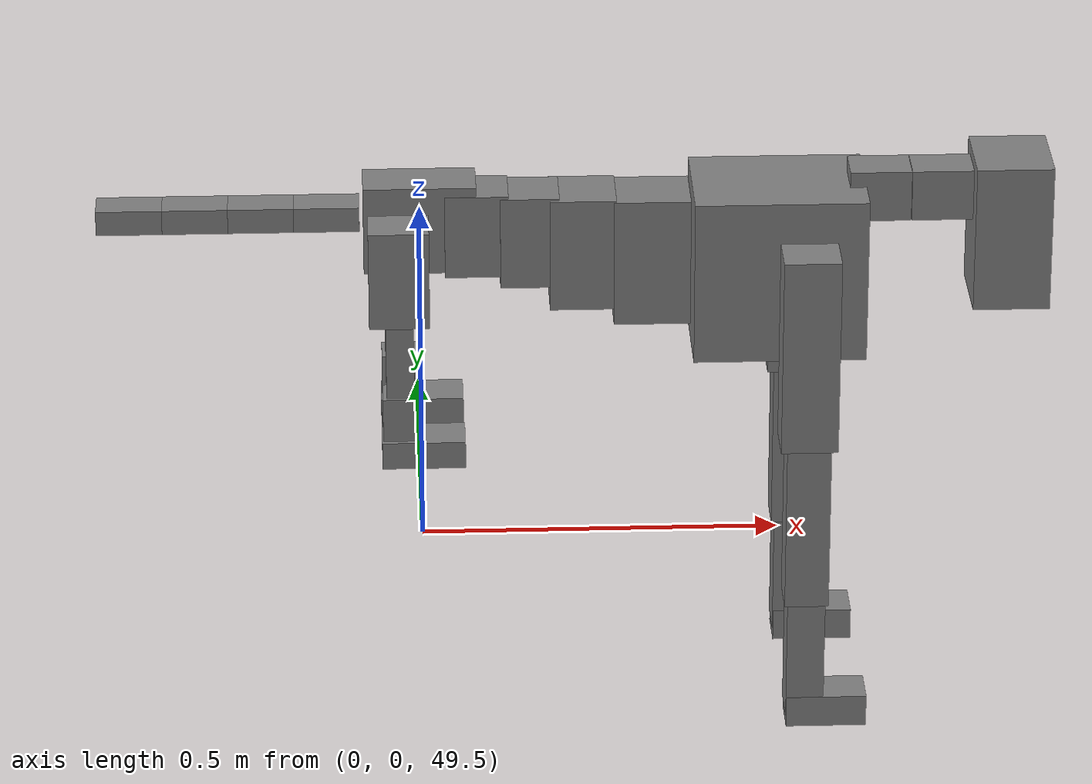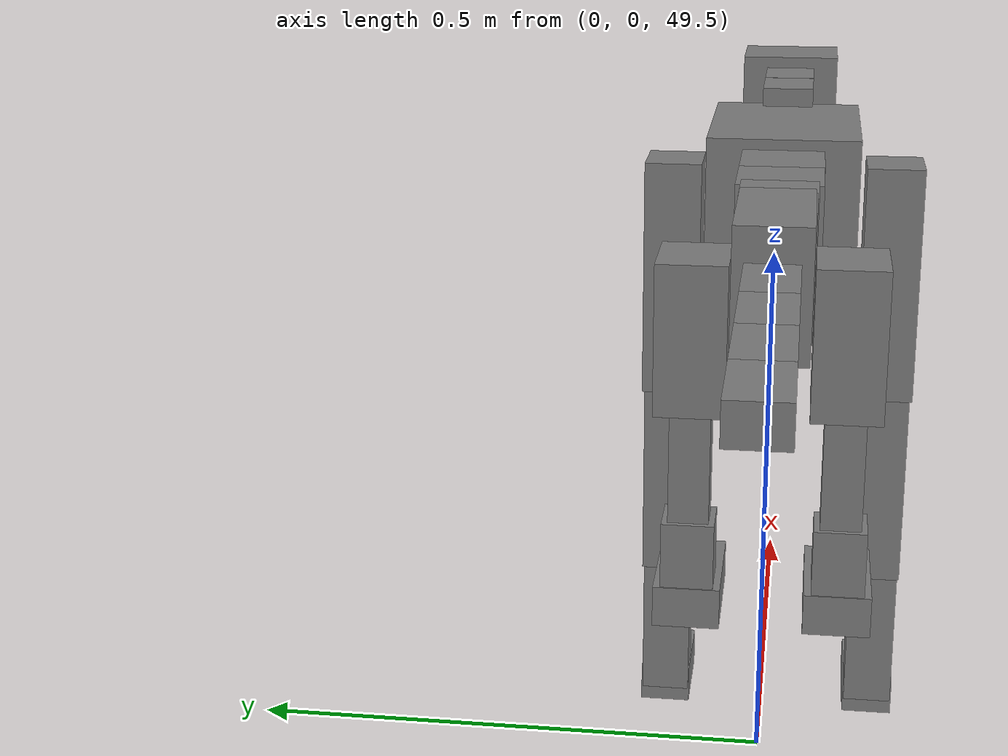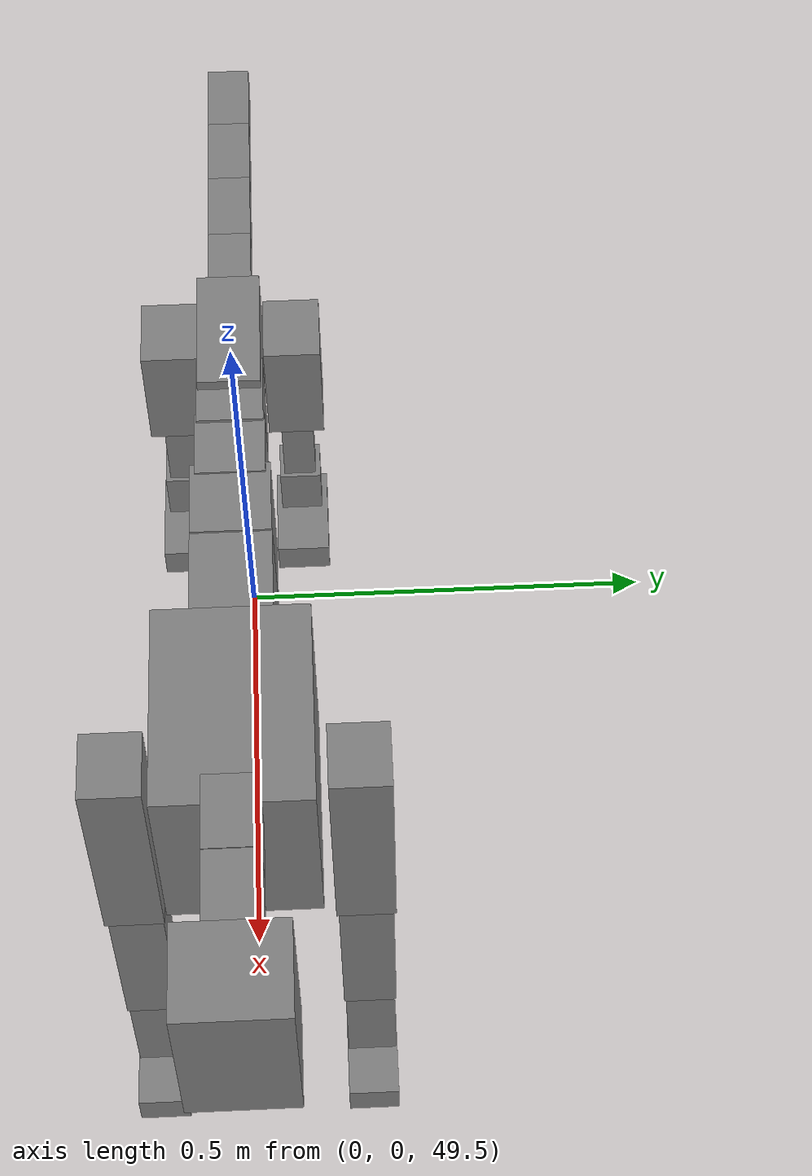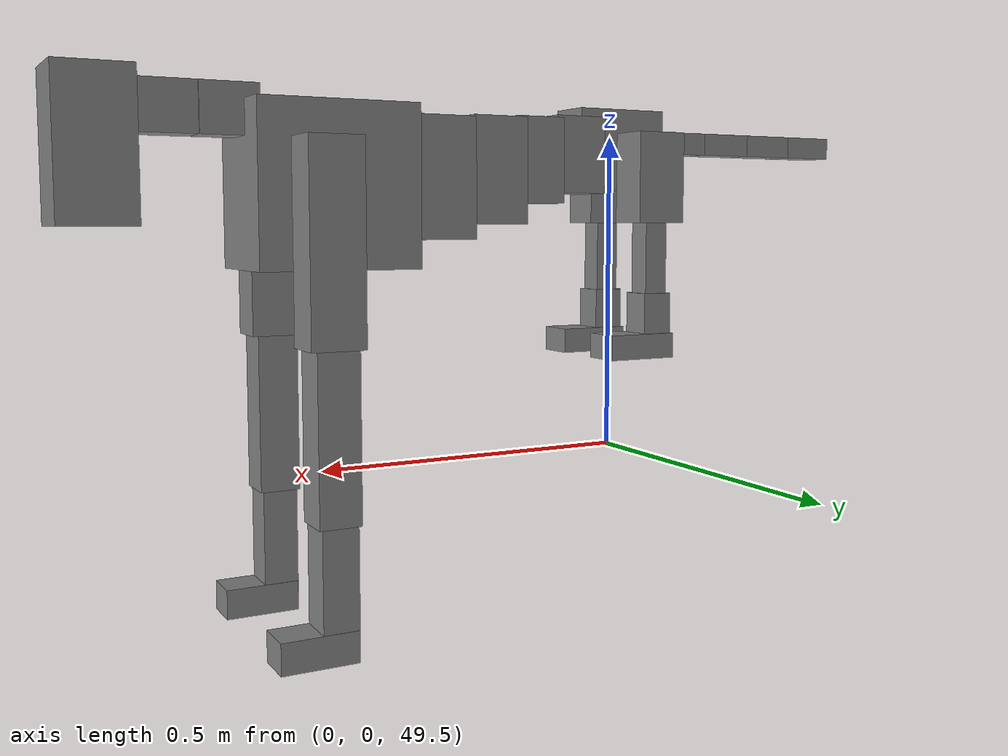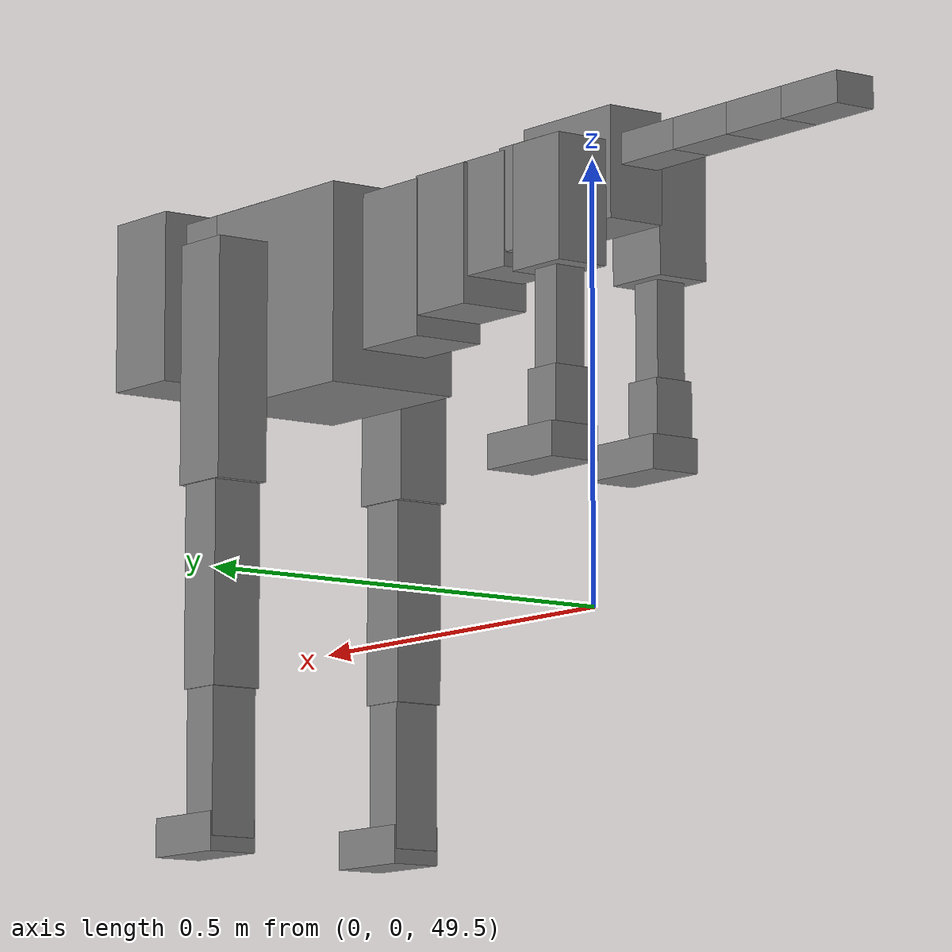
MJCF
<mujoco model="dog">

    <default>
        <joint armature="0.02" stiffness="1" damping="0.2" limited="true"/>
        <geom condim="3" friction="1 0.05 0.05" margin="0.01"/>
        <motor ctrllimited="true" ctrlrange="-1.0 1.0" forcelimited="true" gear="50"/>
    </default>

    <compiler inertiafromgeom="true" angle="radian"/>

    <option timestep="0.016" iterations="50" tolerance="1e-10" solver="Newton" jacobian="dense" cone="pyramidal"/>

    <size nconmax="20000" njmax="60000" nstack="5000000"/>
    <visual>
        <map force="0.1" zfar="30"/>
        <rgba haze="0.15 0.25 0.35 1"/>
        <quality shadowsize="2048"/>
        <global offwidth="800" offheight="800"/>
    </visual>

    <asset>
        <texture type="skybox" builtin="gradient" rgb1="0.3 0.5 0.7" rgb2="0 0 0" width="512" height="512"/>
        <texture name="texplane" type="2d" builtin="checker" rgb1=".2 .3 .4" rgb2=".1 0.15 0.2" width="512" height="512"
                 mark="cross" markrgb=".8 .8 .8"/>
        <texture name="texgeom" type="cube" builtin="flat" mark="cross" width="127" height="1278" rgb1="0.8 0.6 0.4"
                 rgb2="0.8 0.6 0.4" markrgb="1 1 1" random="0.01"/>

        <material name="matplane" reflectance="0.3" texture="texplane" texrepeat="1 1" texuniform="true"/>
        <material name="matgeom" texture="texgeom" texuniform="true" rgba="0.8 0.6 .4 1"/>
    </asset>

    <worldbody>
        <geom name="floor" pos="0 0 0" size="0 0 .25" type="plane" material="matplane" condim="3"/>

        <light directional="false" diffuse=".2 .2 .2" specular="0 0 0" pos="0 0 5" dir="0 0 -1" castshadow="false"/>
        <light mode="targetbodycom" target="torso" directional="false" diffuse=".8 .8 .8" specular="0.3 0.3 0.3"
               pos="0 0 4.0" dir="0 0 -1"/>

        <body name="root" pos="0 0 50">
            <freejoint name="root_1"/>
            <geom type="box" pos="0 0 -0.02" size="0.0774  0.0358  0.063" density="2030"/>

            <body name="spine1" pos="0.054 0 0">
                <joint name="spine1_y" axis="0 1 0" range="0 0.7" limited="true"/>
                <geom type="box" pos="0.02375 0 -0.03" size="0.04375  0.0375  0.05985" density="2030"/>

                <body name="spine2" pos="0.0612 0 0">
                    <joint name="spine2_y" axis="0 1 0" range="-0.15 0.15" limited="true"/>
                    <geom type="box" pos="0.03555  0  -0.04" size="0.04055  0.039  0.06615" density="2030"/>

                    <body name="spine3" pos="0.0730 0 0">
                        <joint name="spine3_y" axis="0 1 0" range="-0.15 0.15" limited="true"/>
                        <geom type="box" pos="0.03555  0  -0.057" size="0.04555  0.0445  0.081" density="2030"/>

                        <body name="spine4" pos="0.0780 0 0">
                            <joint name="spine4_y" axis="0 1 0" range="-0.15 0.15" limited="true"/>
                            <geom type="box" pos="0.05265  0  -0.07" size="0.05265  0.045  0.09135" density="2030"/>

                            <body name="torso" pos="0.1082 0 0">
                                <joint name="torso_y" axis="0 1 0" range="-0.15 0.15" limited="true"/>
                                <geom type="box" pos="0.11925  0  -0.085" size="0.11925  0.085  0.11745"
                                      density="2030"/>

                                <body name="neck1" pos="0.2160  0   0.0180">
                                    <joint name="neck1_y" axis="0 1 0" range="-1.2  -1" limited="true"/>
                                    <geom type="box" pos="0.0423  0  0" size="0.0423  0.03  0.036" density="2325"/>

                                    <body name="neck2" pos="0.0853  0  0">
                                        <joint name="neck2_y" axis="0 1 0" range="0.1  0" limited="true"/>
                                        <geom type="box" pos="0.0423  0  0" size="0.0423  0.03  0.036" density="2325"/>

                                        <body name="head" pos="0.0853  0  0">
                                            <joint name="head_y" axis="0 1 0" range="-0.3  -0.2" limited="true"/>
                                            <geom type="box" pos="0.0531  0  -0.055" size="0.0531  0.06  0.1044"
                                                  density="4030"/>

                                        </body>
                                    </body>
                                </body>

                                <body name="front_shoulder" pos="0.156  0   -0.0480">
                                    <joint name="front_shoulder_y" axis="0 1 0" range="-1 1.5" limited="true"/>
                                    <geom type="box" pos="0 0.13 -0.1156" size="0.0394  0.0337  0.1423" density="1158"/>
                                    <geom type="box" pos="0 -0.13 -0.1156" size="0.0394  0.0337  0.1423"
                                          density="1158"/>

                                    <body name="front_elbow" pos="0  0  -0.2312">
                                        <joint name="front_elbow_y" axis="0 1 0" range="-2 0" limited="true"/>
                                        <geom type="box" pos="0 0.13 -0.1331" size="0.0306  0.0312  0.1331"
                                              density="1081"/>
                                        <geom type="box" pos="0 -0.13 -0.1331" size="0.0306  0.0312  0.1331"
                                              density="1081"/>

                                        <body name="front_wrist" pos="0  0  -0.2662">
                                            <joint name="front_wrist_y" axis="0 1 0" range="-0.2 0" limited="true"/>
                                            <geom type="box" pos="0 0.13 -0.0797" size="0.0264  0.0294  0.0929"
                                                  density="1664"/>
                                            <geom type="box" pos="0 -0.13 -0.0797" size="0.0264  0.0294  0.0929"
                                                  density="1664"/>

                                            <body name="front_finger_end" pos="0  0  -0.1594">
                                                <joint name="front_finger_y" axis="0 1 0" range="-0.4 1"
                                                       limited="true"/>
                                                <geom type="box" pos="0.0307  0.13  -0.0078"
                                                      size="0.0562  0.0307  0.0228" density="1515"/>
                                                <geom type="box" pos="0.0307  -0.13  -0.0078"
                                                      size="0.0562  0.0307  0.0228" density="1515"/>

                                            </body>

                                        </body>
                                    </body>
                                </body>

                            </body>
                        </body>
                    </body>
                </body>
            </body>

            <body name="back_hip" pos="-0.03 0 -0.018">
                <joint name="back_hip_y" axis="0 1 0" range="-1.5 0.3" limited="true"/>
                <geom type="box" pos="0 0.07 -0.0478" size="0.0414  0.0325  0.0706" density="1154"/>
                <geom type="box" pos="0 -0.07 -0.0478" size="0.0414  0.0325  0.0706" density="1154"/>

                <body name="back_knee" pos="0  0  -0.0956">
                    <joint name="back_knee_y" axis="0 1 0" range="0 2.8" limited="true"/>
                    <geom type="box" pos="0 0.07 -0.0724" size="0.0193  0.0190  0.0880" density="1227"/>
                    <geom type="box" pos="0 -0.07 -0.0724" size="0.0193  0.0190  0.0880" density="1227"/>

                    <body name="back_ankle" pos="0  0  -0.1448">
                        <joint name="back_ankle_y" axis="0 1 0" range="-2.2 0" limited="true"/>
                        <geom type="box" pos="0 0.07 -0.0336" size="0.0246  0.0246  0.0448" density="1284"/>
                        <geom type="box" pos="0 -0.07 -0.0336" size="0.0246  0.0246  0.0448" density="1284"/>

                        <body name="back_toe_end" pos="0  0  -0.0671">
                            <joint name="back_toe_y" axis="0 1 0" range="-0.4 1" limited="true"/>
                            <geom type="box" pos="0.0313  0.07  -0.0046" size="0.0575  0.0313  0.0196" density="1515"/>
                            <geom type="box" pos="0.0313  -0.07  -0.0046" size="0.0575  0.0313  0.0196" density="1515"/>

                        </body>
                    </body>
                </body>
            </body>

            <body name="tail1" pos="-0.074 0 -0.006">
                <joint name="tail1_y" axis="0 1 0" range="-0.2 0.2" limited="true"/>
                <geom type="box" pos="-0.0536  0  0" size="0.045  0.025  0.0175" density="1587"/>

                <body name="tail2" pos="-0.09 0 0">
                    <joint name="tail2_y" axis="0 1 0" range="-0.2 0.2" limited="true"/>
                    <geom type="box" pos="-0.0536  0  0" size="0.045  0.025  0.0175" density="1587"/>

                    <body name="tail3" pos="-0.09 0 0">
                        <joint name="tail3_y" axis="0 1 0" range="-0.2 0.2" limited="true"/>
                        <geom type="box" pos="-0.0536  0  0" size="0.045  0.025  0.0175" density="1587"/>

                        <body name="tail4" pos="-0.09 0 0">
                            <joint name="tail4_y" axis="0 1 0" range="-0.2 0.2" limited="true"/>
                            <geom type="box" pos="-0.0536  0  0" size="0.045  0.025  0.0175" density="1587"/>

                        </body>
                    </body>
                </body>
            </body>
        </body>
    </worldbody>

    <actuator>
        <motor joint="spine1_y" forcerange="-150 150     "/>
        <motor joint="spine2_y" forcerange="-150 150     "/>
        <motor joint="spine3_y" forcerange="-150 150     "/>
        <motor joint="spine4_y" forcerange="-150 150     "/>
        <motor joint="torso_y" forcerange="-150 150     "/>
        <motor joint="neck1_y" forcerange="-100 100       "/>
        <motor joint="neck2_y" forcerange="-100 100       "/>
        <motor joint="head_y" forcerange="-150 150       "/>
        <motor joint="front_shoulder_y" forcerange="-184.57 140.20"/>
        <motor joint="front_elbow_y" forcerange="-178.63 148.63"/>
        <motor joint="front_wrist_y" forcerange="-107.58 127.42"/>
        <motor joint="front_finger_y" forcerange="-47.90 75.58"/>
        <motor joint="back_hip_y" forcerange="-272.87 360.21"/>
        <motor joint="back_knee_y" forcerange="-242.18 234.75"/>
        <motor joint="back_angle_y" forcerange="-233.97 60.35"/>
        <motor joint="back_toe_y" forcerange="-65.61 105.10"/>
        <motor joint="tail1_y" forcerange="-50 50     "/>
        <motor joint="tail2_y" forcerange="-50 50     "/>
        <motor joint="tail3_y" forcerange="-50 50     "/>
        <motor joint="tail4_y" forcerange="-50 50     "/>
    </actuator>
</mujoco>
